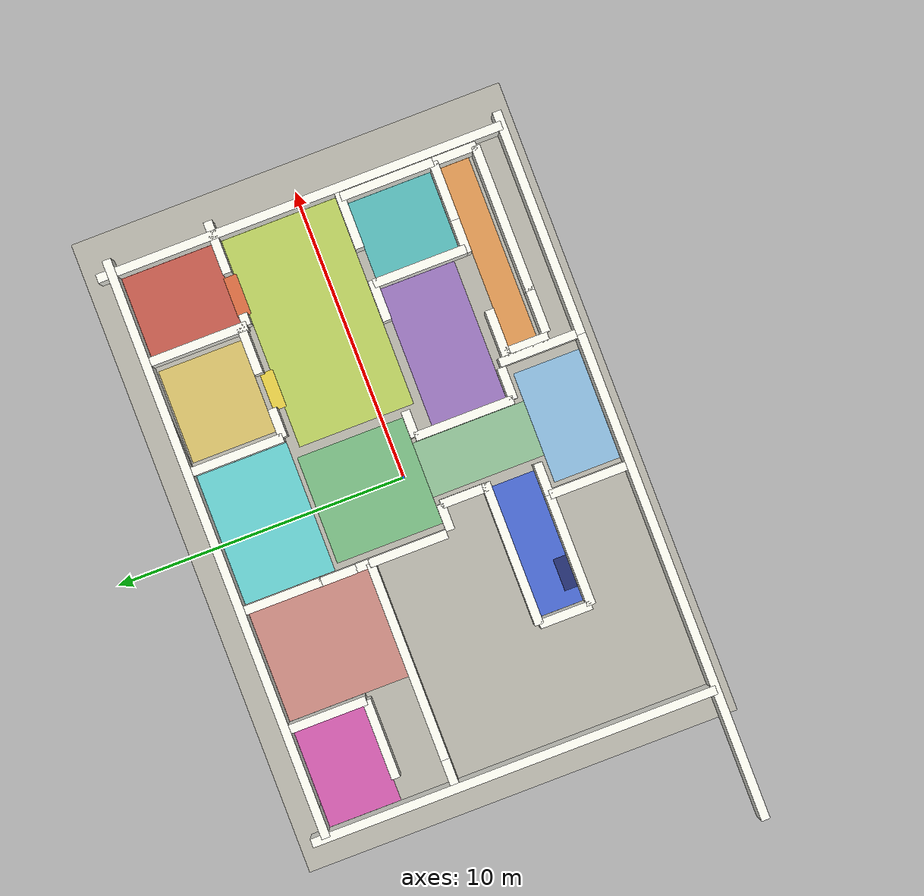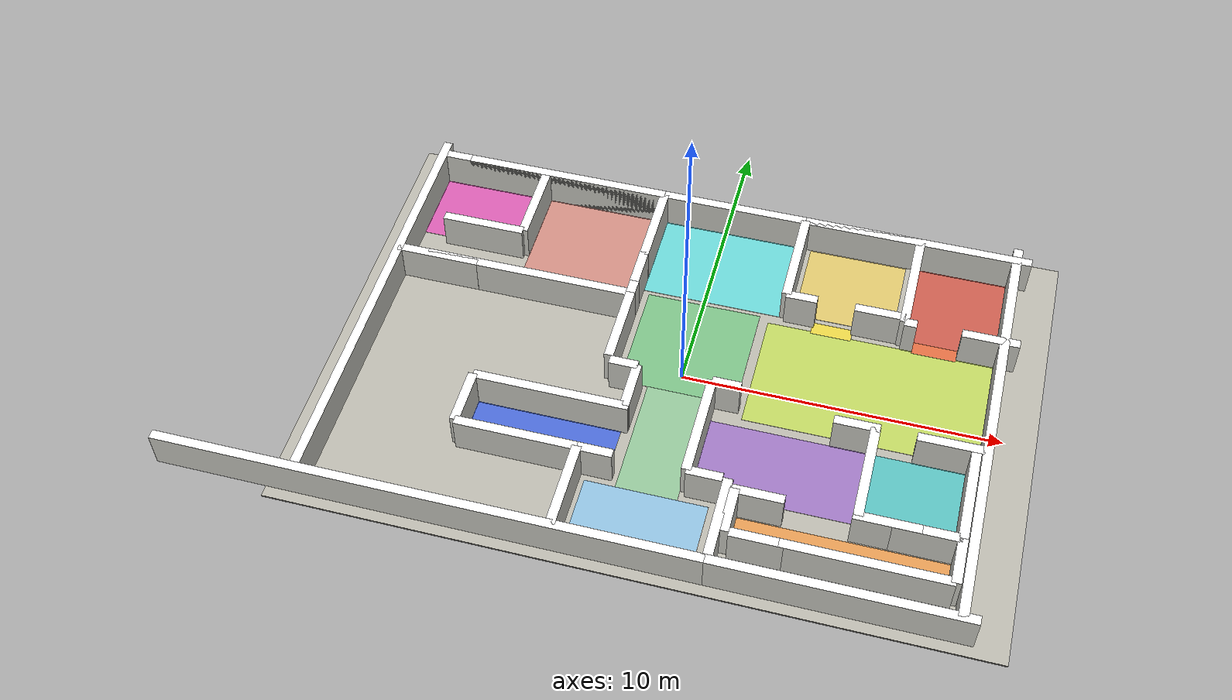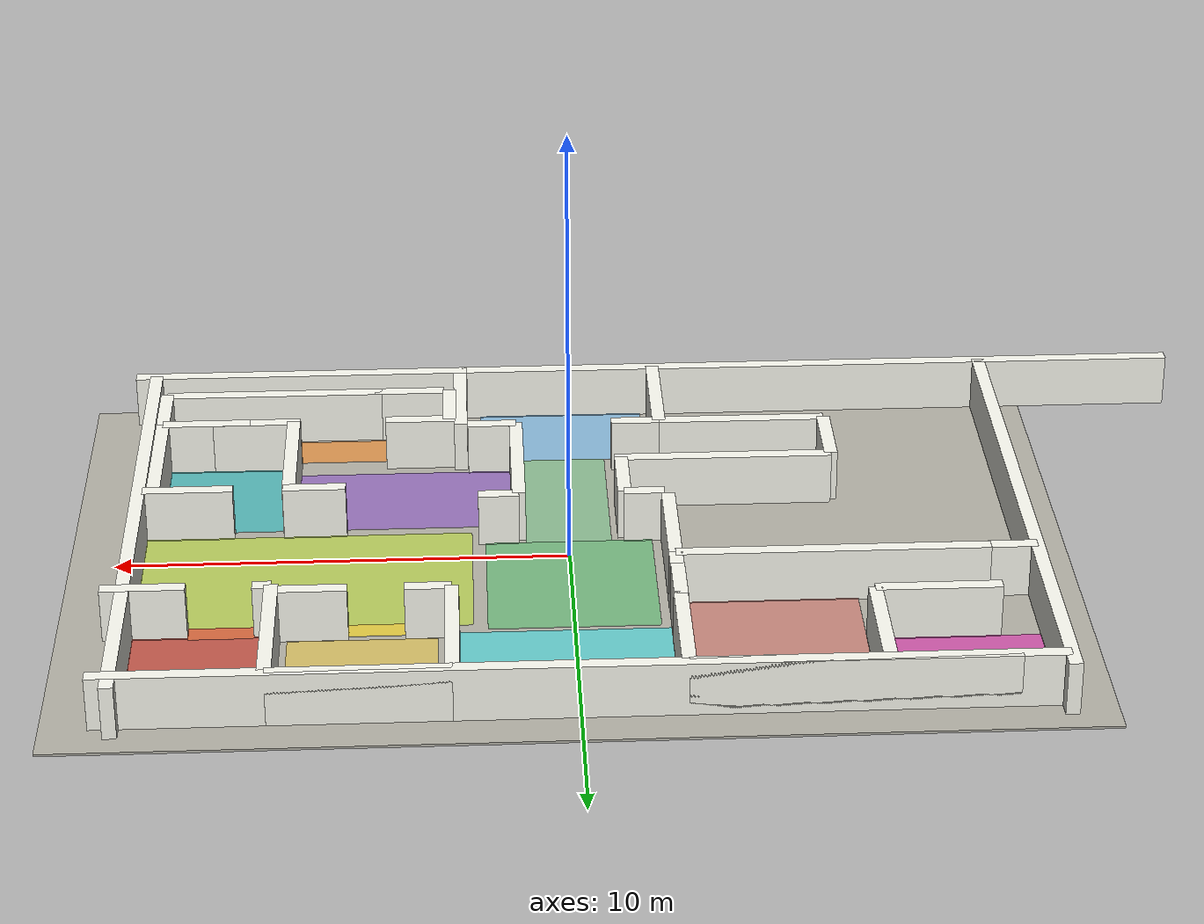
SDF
<sdf version="1.7">
 <world name="map">
  <physics type="ode">
   <max_step_size>0.001</max_step_size>
   <real_time_factor>2</real_time_factor>
   <real_time_update_rate>2000</real_time_update_rate>
  </physics>
  <scene><ambient>0.62 0.62 0.6 1</ambient><background>0.2 0.25 0.3 1</background><shadows>0</shadows></scene>
  <gravity>0 0 -9.8</gravity>
  <magnetic_field>6e-06 2.3e-05 -4.2e-05</magnetic_field>
  <light name="sun" type="directional">
   <pose>0 0 10 0 -0 0</pose>
   <diffuse>0.8 0.8 0.8 1</diffuse>
   <specular>0.2 0.2 0.2 1</specular>
   <direction>-0.5 0.1 -0.9</direction>
   <attenuation><range>10</range></attenuation>
   <spot><inner_angle>0</inner_angle><outer_angle>0</outer_angle><falloff>0</falloff></spot>
  </light>
  <model name="facility_floor">
   <static>1</static>
   <link name="floor_link">
    <pose>0 0 -0.025 0 -0 0</pose>
    <collision name="collision"><geometry><box><size>22 15 0.05</size></box></geometry></collision>
    <visual name="visual">
     <geometry><box><size>22 15 0.05</size></box></geometry>
     <material>
      <ambient>0.7 0.69 0.65 1</ambient>
      <diffuse>0.7 0.69 0.65 1</diffuse>
      <specular>0.1 0.1 0.08 1</specular>
     </material>
    </visual>
   </link>
  </model>
  <model name="wall_outer_north">
   <static>1</static>
   <pose>0 6.5 0.6 0 -0 0</pose>
   <link name="link">
    <collision name="collision"><geometry><box><size>20 0.3 1.2</size></box></geometry></collision>
    <visual name="visual">
     <geometry><box><size>20 0.3 1.2</size></box></geometry>
     <material>
      <ambient>0.98 0.98 0.94 1</ambient>
      <diffuse>0.98 0.98 0.94 1</diffuse>
      <specular>0.35 0.35 0.32 1</specular>
     </material>
    </visual>
   </link>
  </model>
  <model name="wall_outer_west">
   <static>1</static>
   <pose>-10 0 0.6 0 -0 0</pose>
   <link name="link">
    <collision name="collision"><geometry><box><size>0.3 14 1.2</size></box></geometry></collision>
    <visual name="visual">
     <geometry><box><size>0.3 14 1.2</size></box></geometry>
     <material>
      <ambient>0.98 0.98 0.94 1</ambient>
      <diffuse>0.98 0.98 0.94 1</diffuse>
      <specular>0.35 0.35 0.32 1</specular>
     </material>
    </visual>
   </link>
  </model>
  <model name="wall_outer_east">
   <static>1</static>
   <pose>9.52082 0 0.6 0 -0 0</pose>
   <link name="link">
    <collision name="collision"><geometry><box><size>0.3 14 1.2</size></box></geometry></collision>
    <visual name="visual">
     <geometry><box><size>0.3 14 1.2</size></box></geometry>
     <material>
      <ambient>0.98 0.98 0.94 1</ambient>
      <diffuse>0.98 0.98 0.94 1</diffuse>
      <specular>0.35 0.35 0.32 1</specular>
     </material>
    </visual>
   </link>
  </model>
  <model name="wall_outer_south_west">
   <static>1</static>
   <pose>-6.1 -7 0.6 0 -0 0</pose>
   <link name="link">
    <collision name="collision"><geometry><box><size>16.8 0.3 1.2</size></box></geometry></collision>
    <visual name="visual">
     <geometry><box><size>16.8 0.3 1.2</size></box></geometry>
     <material>
      <ambient>0.98 0.98 0.94 1</ambient>
      <diffuse>0.98 0.98 0.94 1</diffuse>
      <specular>0.35 0.35 0.32 1</specular>
     </material>
    </visual>
   </link>
  </model>
  <model name="wall_outer_south_east">
   <static>1</static>
   <pose>6.1 -7 0.6 0 -0 0</pose>
   <link name="link">
    <collision name="collision"><geometry><box><size>7.8 0.3 1.2</size></box></geometry></collision>
    <visual name="visual">
     <geometry><box><size>7.8 0.3 1.2</size></box></geometry>
     <material>
      <ambient>0.98 0.98 0.94 1</ambient>
      <diffuse>0.98 0.98 0.94 1</diffuse>
      <specular>0.35 0.35 0.32 1</specular>
     </material>
    </visual>
   </link>
  </model>
  <model name="wall_lobby_west">
   <static>1</static>
   <pose>-2.2 -5.6 0.6 0 -0 0</pose>
   <link name="link">
    <collision name="collision"><geometry><box><size>0.3 2.8 1.2</size></box></geometry></collision>
    <visual name="visual">
     <geometry><box><size>0.3 2.8 1.2</size></box></geometry>
     <material>
      <ambient>0.98 0.98 0.94 1</ambient>
      <diffuse>0.98 0.98 0.94 1</diffuse>
      <specular>0.35 0.35 0.32 1</specular>
     </material>
    </visual>
   </link>
  </model>
  <model name="wall_lobby_east">
   <static>1</static>
   <pose>2.36275 -5.6 0.6 0 -0 0</pose>
   <link name="link">
    <collision name="collision"><geometry><box><size>0.3 2.8 1.2</size></box></geometry></collision>
    <visual name="visual">
     <geometry><box><size>0.3 2.8 1.2</size></box></geometry>
     <material>
      <ambient>0.98 0.98 0.94 1</ambient>
      <diffuse>0.98 0.98 0.94 1</diffuse>
      <specular>0.35 0.35 0.32 1</specular>
     </material>
    </visual>
   </link>
  </model>
  <model name="wall_lobby_north_left">
   <static>1</static>
   <pose>-1.65 -4.2 0.6 0 -0 0</pose>
   <link name="link">
    <collision name="collision"><geometry><box><size>1.1 0.3 1.2</size></box></geometry></collision>
    <visual name="visual">
     <geometry><box><size>1.1 0.3 1.2</size></box></geometry>
     <material>
      <ambient>0.98 0.98 0.94 1</ambient>
      <diffuse>0.98 0.98 0.94 1</diffuse>
      <specular>0.35 0.35 0.32 1</specular>
     </material>
    </visual>
   </link>
  </model>
  <model name="wall_lobby_north_right">
   <static>1</static>
   <pose>1.65 -4.2 0.6 0 -0 0</pose>
   <link name="link">
    <collision name="collision"><geometry><box><size>1.1 0.3 1.2</size></box></geometry></collision>
    <visual name="visual">
     <geometry><box><size>1.1 0.3 1.2</size></box></geometry>
     <material>
      <ambient>0.98 0.98 0.94 1</ambient>
      <diffuse>0.98 0.98 0.94 1</diffuse>
      <specular>0.35 0.35 0.32 1</specular>
     </material>
    </visual>
   </link>
  </model>
  <model name="wall_mother_base_west">
   <static>1</static>
   <pose>-6 -3.3 0.6 0 -0 0</pose>
   <link name="link">
    <collision name="collision"><geometry><box><size>0.3 1.8 1.2</size></box></geometry></collision>
    <visual name="visual">
     <geometry><box><size>0.3 1.8 1.2</size></box></geometry>
     <material>
      <ambient>0.98 0.98 0.94 1</ambient>
      <diffuse>0.98 0.98 0.94 1</diffuse>
      <specular>0.35 0.35 0.32 1</specular>
     </material>
    </visual>
   </link>
  </model>
  <model name="wall_mother_base_north">
   <static>1</static>
   <pose>-3.55 -2.4 0.6 0 -0 0</pose>
   <link name="link">
    <collision name="collision"><geometry><box><size>4.9 0.3 1.2</size></box></geometry></collision>
    <visual name="visual">
     <geometry><box><size>4.9 0.3 1.2</size></box></geometry>
     <material>
      <ambient>0.98 0.98 0.94 1</ambient>
      <diffuse>0.98 0.98 0.94 1</diffuse>
      <specular>0.35 0.35 0.32 1</specular>
     </material>
    </visual>
   </link>
  </model>
  <model name="wall_mother_base_south">
   <static>1</static>
   <pose>-4.1 -4.2 0.6 0 -0 0</pose>
   <link name="link">
    <collision name="collision"><geometry><box><size>3.8 0.3 1.2</size></box></geometry></collision>
    <visual name="visual">
     <geometry><box><size>3.8 0.3 1.2</size></box></geometry>
     <material>
      <ambient>0.98 0.98 0.94 1</ambient>
      <diffuse>0.98 0.98 0.94 1</diffuse>
      <specular>0.35 0.35 0.32 1</specular>
     </material>
    </visual>
   </link>
  </model>
  <model name="wall_corridor_east">
   <static>1</static>
   <pose>1.1 -2.5 0.6 0 -0 0</pose>
   <link name="link">
    <collision name="collision"><geometry><box><size>0.3 3.4 1.2</size></box></geometry></collision>
    <visual name="visual">
     <geometry><box><size>0.3 3.4 1.2</size></box></geometry>
     <material>
      <ambient>0.98 0.98 0.94 1</ambient>
      <diffuse>0.98 0.98 0.94 1</diffuse>
      <specular>0.35 0.35 0.32 1</specular>
     </material>
    </visual>
   </link>
  </model>
  <model name="wall_corridor_west">
   <static>1</static>
   <pose>-1.24307 -1.6 0.6 0 -0 0</pose>
   <link name="link">
    <collision name="collision"><geometry><box><size>0.3 1.6 1.2</size></box></geometry></collision>
    <visual name="visual">
     <geometry><box><size>0.3 1.6 1.2</size></box></geometry>
     <material>
      <ambient>0.98 0.98 0.94 1</ambient>
      <diffuse>0.98 0.98 0.94 1</diffuse>
      <specular>0.35 0.35 0.32 1</specular>
     </material>
    </visual>
   </link>
  </model>
  <model name="wall_hall_south_left">
   <static>1</static>
   <pose>-1.67934 -0.8 0.6 0 -0 0</pose>
   <link name="link">
    <collision name="collision"><geometry><box><size>0.9 0.3 1.2</size></box></geometry></collision>
    <visual name="visual">
     <geometry><box><size>0.9 0.3 1.2</size></box></geometry>
     <material>
      <ambient>0.98 0.98 0.94 1</ambient>
      <diffuse>0.98 0.98 0.94 1</diffuse>
      <specular>0.35 0.35 0.32 1</specular>
     </material>
    </visual>
   </link>
  </model>
  <model name="wall_hall_south_right">
   <static>1</static>
   <pose>1.55 -0.8 0.6 0 -0 0</pose>
   <link name="link">
    <collision name="collision"><geometry><box><size>0.9 0.3 1.2</size></box></geometry></collision>
    <visual name="visual">
     <geometry><box><size>0.9 0.3 1.2</size></box></geometry>
     <material>
      <ambient>0.98 0.98 0.94 1</ambient>
      <diffuse>0.98 0.98 0.94 1</diffuse>
      <specular>0.35 0.35 0.32 1</specular>
     </material>
    </visual>
   </link>
  </model>
  <model name="wall_hall_west_lower">
   <static>1</static>
   <pose>-2.20096 0.698173 0.6 0 -0 0</pose>
   <link name="link">
    <collision name="collision"><geometry><box><size>0.3 2.7 1.2</size></box></geometry></collision>
    <visual name="visual">
     <geometry><box><size>0.3 2.7 1.2</size></box></geometry>
     <material>
      <ambient>0.98 0.98 0.94 1</ambient>
      <diffuse>0.98 0.98 0.94 1</diffuse>
      <specular>0.35 0.35 0.32 1</specular>
     </material>
    </visual>
   </link>
  </model>
  <model name="wall_hall_east_upper">
   <static>1</static>
   <pose>-2.20831 3.12893 0.6 0 -0 0</pose>
   <link name="link">
    <collision name="collision"><geometry><box><size>0.3 1.3 1.2</size></box></geometry></collision>
    <visual name="visual">
     <geometry><box><size>0.3 1.3 1.2</size></box></geometry>
     <material>
      <ambient>0.98 0.98 0.94 1</ambient>
      <diffuse>0.98 0.98 0.94 1</diffuse>
      <specular>0.35 0.35 0.32 1</specular>
     </material>
    </visual>
   </link>
  </model>
  <model name="wall_lab_north">
   <static>1</static>
   <pose>-5.6 6.5 0.6 0 -0 0</pose>
   <link name="link">
    <collision name="collision"><geometry><box><size>6.8 0.3 1.2</size></box></geometry></collision>
    <visual name="visual">
     <geometry><box><size>6.8 0.3 1.2</size></box></geometry>
     <material>
      <ambient>0.98 0.98 0.94 1</ambient>
      <diffuse>0.98 0.98 0.94 1</diffuse>
      <specular>0.35 0.35 0.32 1</specular>
     </material>
    </visual>
   </link>
  </model>
  <model name="wall_lab_south">
   <static>1</static>
   <pose>-5.6 2 0.6 0 -0 0</pose>
   <link name="link">
    <collision name="collision"><geometry><box><size>6.8 0.3 1.2</size></box></geometry></collision>
    <visual name="visual">
     <geometry><box><size>6.8 0.3 1.2</size></box></geometry>
     <material>
      <ambient>0.98 0.98 0.94 1</ambient>
      <diffuse>0.98 0.98 0.94 1</diffuse>
      <specular>0.35 0.35 0.32 1</specular>
     </material>
    </visual>
   </link>
  </model>
  <model name="wall_lab_east_lower">
   <static>1</static>
   <pose>-2.2 2.25 0.6 0 -0 0</pose>
   <link name="link">
    <collision name="collision"><geometry><box><size>0.3 0.5 1.2</size></box></geometry></collision>
    <visual name="visual">
     <geometry><box><size>0.3 0.5 1.2</size></box></geometry>
     <material>
      <ambient>0.98 0.98 0.94 1</ambient>
      <diffuse>0.98 0.98 0.94 1</diffuse>
      <specular>0.35 0.35 0.32 1</specular>
     </material>
    </visual>
   </link>
  </model>
  <model name="wall_lab_east_upper">
   <static>1</static>
   <pose>-2.2 5.1 0.6 0 -0 0</pose>
   <link name="link">
    <collision name="collision"><geometry><box><size>0.3 2.8 1.2</size></box></geometry></collision>
    <visual name="visual">
     <geometry><box><size>0.3 2.8 1.2</size></box></geometry>
     <material>
      <ambient>0.98 0.98 0.94 1</ambient>
      <diffuse>0.98 0.98 0.94 1</diffuse>
      <specular>0.35 0.35 0.32 1</specular>
     </material>
    </visual>
   </link>
  </model>
  <model name="wall_prep_partition">
   <static>1</static>
   <pose>-6.3 5.1 0.6 0 -0 0</pose>
   <link name="link">
    <collision name="collision"><geometry><box><size>0.3 2.8 1.2</size></box></geometry></collision>
    <visual name="visual">
     <geometry><box><size>0.3 2.8 1.2</size></box></geometry>
     <material>
      <ambient>0.98 0.98 0.94 1</ambient>
      <diffuse>0.98 0.98 0.94 1</diffuse>
      <specular>0.35 0.35 0.32 1</specular>
     </material>
    </visual>
   </link>
  </model>
  <model name="wall_prep_south">
   <static>1</static>
   <pose>-7.65 3.7 0.6 0 -0 0</pose>
   <link name="link">
    <collision name="collision"><geometry><box><size>2.7 0.3 1.2</size></box></geometry></collision>
    <visual name="visual">
     <geometry><box><size>2.7 0.3 1.2</size></box></geometry>
     <material>
      <ambient>0.98 0.98 0.94 1</ambient>
      <diffuse>0.98 0.98 0.94 1</diffuse>
      <specular>0.35 0.35 0.32 1</specular>
     </material>
    </visual>
   </link>
  </model>
  <model name="wall_prep_south_1">
   <static>1</static>
   <pose>-8.65585 1.99879 0.6 0 -0 0</pose>
   <link name="link">
    <collision name="collision"><geometry><box><size>2.7 0.3 1.2</size></box></geometry></collision>
    <visual name="visual">
     <geometry><box><size>2.7 0.3 1.2</size></box></geometry>
     <material>
      <ambient>0.98 0.98 0.94 1</ambient>
      <diffuse>0.98 0.98 0.94 1</diffuse>
      <specular>0.35 0.35 0.32 1</specular>
     </material>
    </visual>
   </link>
  </model>
  <model name="wall_server_west">
   <static>1</static>
   <pose>2.6 4.85 0.6 0 -0 0</pose>
   <link name="link">
    <collision name="collision"><geometry><box><size>0.3 3.3 1.2</size></box></geometry></collision>
    <visual name="visual">
     <geometry><box><size>0.3 3.3 1.2</size></box></geometry>
     <material>
      <ambient>0.98 0.98 0.94 1</ambient>
      <diffuse>0.98 0.98 0.94 1</diffuse>
      <specular>0.35 0.35 0.32 1</specular>
     </material>
    </visual>
   </link>
  </model>
  <model name="wall_server_north">
   <static>1</static>
   <pose>4.5 6.5 0.6 0 -0 0</pose>
   <link name="link">
    <collision name="collision"><geometry><box><size>3.8 0.3 1.2</size></box></geometry></collision>
    <visual name="visual">
     <geometry><box><size>3.8 0.3 1.2</size></box></geometry>
     <material>
      <ambient>0.98 0.98 0.94 1</ambient>
      <diffuse>0.98 0.98 0.94 1</diffuse>
      <specular>0.35 0.35 0.32 1</specular>
     </material>
    </visual>
   </link>
  </model>
  <model name="wall_server_south_left">
   <static>1</static>
   <pose>3.1 3.2 0.6 0 -0 0</pose>
   <link name="link">
    <collision name="collision"><geometry><box><size>1 0.3 1.2</size></box></geometry></collision>
    <visual name="visual">
     <geometry><box><size>1 0.3 1.2</size></box></geometry>
     <material>
      <ambient>0.98 0.98 0.94 1</ambient>
      <diffuse>0.98 0.98 0.94 1</diffuse>
      <specular>0.35 0.35 0.32 1</specular>
     </material>
    </visual>
   </link>
  </model>
  <model name="wall_server_south_right">
   <static>1</static>
   <pose>5.6 3.2 0.6 0 -0 0</pose>
   <link name="link">
    <collision name="collision"><geometry><box><size>1.6 0.3 1.2</size></box></geometry></collision>
    <visual name="visual">
     <geometry><box><size>1.6 0.3 1.2</size></box></geometry>
     <material>
      <ambient>0.98 0.98 0.94 1</ambient>
      <diffuse>0.98 0.98 0.94 1</diffuse>
      <specular>0.35 0.35 0.32 1</specular>
     </material>
    </visual>
   </link>
  </model>
  <model name="wall_restricted_west">
   <static>1</static>
   <pose>6.4 4.75 0.6 0 -0 0</pose>
   <link name="link">
    <collision name="collision"><geometry><box><size>0.3 3.5 1.2</size></box></geometry></collision>
    <visual name="visual">
     <geometry><box><size>0.3 3.5 1.2</size></box></geometry>
     <material>
      <ambient>0.98 0.98 0.94 1</ambient>
      <diffuse>0.98 0.98 0.94 1</diffuse>
      <specular>0.35 0.35 0.32 1</specular>
     </material>
    </visual>
   </link>
  </model>
  <model name="wall_restricted_south_left">
   <static>1</static>
   <pose>6.6 3 0.6 0 -0 0</pose>
   <link name="link">
    <collision name="collision"><geometry><box><size>0.4 0.3 1.2</size></box></geometry></collision>
    <visual name="visual">
     <geometry><box><size>0.4 0.3 1.2</size></box></geometry>
     <material>
      <ambient>0.98 0.98 0.94 1</ambient>
      <diffuse>0.98 0.98 0.94 1</diffuse>
      <specular>0.35 0.35 0.32 1</specular>
     </material>
    </visual>
   </link>
  </model>
  <model name="wall_restricted_south_right">
   <static>1</static>
   <pose>9.1 3 0.6 0 -0 0</pose>
   <link name="link">
    <collision name="collision"><geometry><box><size>1.8 0.3 1.2</size></box></geometry></collision>
    <visual name="visual">
     <geometry><box><size>1.8 0.3 1.2</size></box></geometry>
     <material>
      <ambient>0.98 0.98 0.94 1</ambient>
      <diffuse>0.98 0.98 0.94 1</diffuse>
      <specular>0.35 0.35 0.32 1</specular>
     </material>
    </visual>
   </link>
  </model>
  <model name="wall_service_east">
   <static>1</static>
   <pose>9.2 -2.9 0.6 0 -0 0</pose>
   <link name="link">
    <collision name="collision"><geometry><box><size>0.3 3.2 1.2</size></box></geometry></collision>
    <visual name="visual">
     <geometry><box><size>0.3 3.2 1.2</size></box></geometry>
     <material>
      <ambient>0.98 0.98 0.94 1</ambient>
      <diffuse>0.98 0.98 0.94 1</diffuse>
      <specular>0.35 0.35 0.32 1</specular>
     </material>
    </visual>
   </link>
  </model>
  <model name="wall_storage_utility_partition">
   <static>1</static>
   <pose>6.2 -2.9 0.6 0 -0 0</pose>
   <link name="link">
    <collision name="collision"><geometry><box><size>0.3 3.2 1.2</size></box></geometry></collision>
    <visual name="visual">
     <geometry><box><size>0.3 3.2 1.2</size></box></geometry>
     <material>
      <ambient>0.98 0.98 0.94 1</ambient>
      <diffuse>0.98 0.98 0.94 1</diffuse>
      <specular>0.35 0.35 0.32 1</specular>
     </material>
    </visual>
   </link>
  </model>
  <model name="wall_service_north_mid">
   <static>1</static>
   <pose>5.63336 -1.3 0.6 0 -0 0</pose>
   <link name="link">
    <collision name="collision"><geometry><box><size>1.4 0.3 1.2</size></box></geometry></collision>
    <visual name="visual">
     <geometry><box><size>1.4 0.3 1.2</size></box></geometry>
     <material>
      <ambient>0.98 0.98 0.94 1</ambient>
      <diffuse>0.98 0.98 0.94 1</diffuse>
      <specular>0.35 0.35 0.32 1</specular>
     </material>
    </visual>
   </link>
  </model>
  <model name="wall_service_north_right">
   <static>1</static>
   <pose>8.43292 -1.3 0.6 0 -0 0</pose>
   <link name="link">
    <collision name="collision"><geometry><box><size>2 0.3 1.2</size></box></geometry></collision>
    <visual name="visual">
     <geometry><box><size>2 0.3 1.2</size></box></geometry>
     <material>
      <ambient>0.98 0.98 0.94 1</ambient>
      <diffuse>0.98 0.98 0.94 1</diffuse>
      <specular>0.35 0.35 0.32 1</specular>
     </material>
    </visual>
   </link>
  </model>
  <model name="wall_passage_north_left">
   <static>1</static>
   <pose>3.2889 -4.5 0.6 0 -0 0</pose>
   <link name="link">
    <collision name="collision"><geometry><box><size>1.6 0.3 1.2</size></box></geometry></collision>
    <visual name="visual">
     <geometry><box><size>1.6 0.3 1.2</size></box></geometry>
     <material>
      <ambient>0.98 0.98 0.94 1</ambient>
      <diffuse>0.98 0.98 0.94 1</diffuse>
      <specular>0.35 0.35 0.32 1</specular>
     </material>
    </visual>
   </link>
  </model>
  <model name="wall_passage_north_right">
   <static>1</static>
   <pose>8.2 -4.5 0.6 0 -0 0</pose>
   <link name="link">
    <collision name="collision"><geometry><box><size>2 0.3 1.2</size></box></geometry></collision>
    <visual name="visual">
     <geometry><box><size>2 0.3 1.2</size></box></geometry>
     <material>
      <ambient>0.98 0.98 0.94 1</ambient>
      <diffuse>0.98 0.98 0.94 1</diffuse>
      <specular>0.35 0.35 0.32 1</specular>
     </material>
    </visual>
   </link>
  </model>
  <model name="wall_passage_north_right_1">
   <static>1</static>
   <pose>7.05106 -4.49709 0.6 0 -0 0</pose>
   <link name="link">
    <collision name="collision"><geometry><box><size>2 0.3 1.2</size></box></geometry></collision>
    <visual name="visual">
     <geometry><box><size>2 0.3 1.2</size></box></geometry>
     <material>
      <ambient>0.98 0.98 0.94 1</ambient>
      <diffuse>0.98 0.98 0.94 1</diffuse>
      <specular>0.35 0.35 0.32 1</specular>
     </material>
    </visual>
   </link>
  </model>
  <model name="wall_passage_north_left_1">
   <static>1</static>
   <pose>3.55993 -5.961 0.6 0 -0 0</pose>
   <link name="link">
    <collision name="collision"><geometry><box><size>1.6 0.3 1.2</size></box></geometry></collision>
    <visual name="visual">
     <geometry><box><size>1.6 0.3 1.2</size></box></geometry>
     <material>
      <ambient>0.98 0.98 0.94 1</ambient>
      <diffuse>0.98 0.98 0.94 1</diffuse>
      <specular>0.35 0.35 0.32 1</specular>
     </material>
    </visual>
   </link>
  </model>
  <model name="wall_passage_south">
   <static>1</static>
   <pose>6.7 -5.96 0.6 0 -0 0</pose>
   <link name="link">
    <collision name="collision"><geometry><box><size>5 0.3 1.2</size></box></geometry></collision>
    <visual name="visual">
     <geometry><box><size>5 0.3 1.2</size></box></geometry>
     <material>
      <ambient>0.98 0.98 0.94 1</ambient>
      <diffuse>0.98 0.98 0.94 1</diffuse>
      <specular>0.35 0.35 0.32 1</specular>
     </material>
    </visual>
   </link>
  </model>
  <model name="wall_passage_west">
   <static>1</static>
   <pose>2.61652 -5.23302 0.6 0 -0 0</pose>
   <link name="link">
    <collision name="collision"><geometry><box><size>0.3 1.5 1.2</size></box></geometry></collision>
    <visual name="visual">
     <geometry><box><size>0.3 1.5 1.2</size></box></geometry>
     <material>
      <ambient>0.98 0.98 0.94 1</ambient>
      <diffuse>0.98 0.98 0.94 1</diffuse>
      <specular>0.35 0.35 0.32 1</specular>
     </material>
    </visual>
   </link>
  </model>
  <model name="wall_passage_east">
   <static>1</static>
   <pose>9.2 -5.25 0.6 0 -0 0</pose>
   <link name="link">
    <collision name="collision"><geometry><box><size>0.3 1.5 1.2</size></box></geometry></collision>
    <visual name="visual">
     <geometry><box><size>0.3 1.5 1.2</size></box></geometry>
     <material>
      <ambient>0.98 0.98 0.94 1</ambient>
      <diffuse>0.98 0.98 0.94 1</diffuse>
      <specular>0.35 0.35 0.32 1</specular>
     </material>
    </visual>
   </link>
  </model>
  <model name="entrance_marker">
   <static>1</static>
   <pose>0 -5.7 0.012 0 -0 0</pose>
   <link name="link">
    <visual name="visual">
     <geometry><box><size>3.8 2.3 0.02</size></box></geometry>
     <material>
      <ambient>0.5 0.78 1 0.66</ambient>
      <diffuse>0.5 0.78 1 0.66</diffuse>
      <emissive>0.07 0.12 0.18 1</emissive>
     </material>
    </visual>
   </link>
  </model>
  <model name="corridor_marker">
   <static>1</static>
   <pose>0 -2.6 0.012 0 -0 0</pose>
   <link name="link">
    <visual name="visual">
     <geometry><box><size>1.9 3.9 0.02</size></box></geometry>
     <material>
      <ambient>0.48 0.82 0.56 0.56</ambient>
      <diffuse>0.48 0.82 0.56 0.56</diffuse>
      <emissive>0.05 0.12 0.05 1</emissive>
     </material>
    </visual>
   </link>
  </model>
  <model name="central_hall_marker">
   <static>1</static>
   <pose>0 1.2 0.014 0 -0 0</pose>
   <link name="link">
    <visual name="visual">
     <geometry><box><size>3.7 3.7 0.02</size></box></geometry>
     <material>
      <ambient>0.4 0.78 0.48 0.68</ambient>
      <diffuse>0.4 0.78 0.48 0.68</diffuse>
      <emissive>0.06 0.14 0.06 1</emissive>
     </material>
    </visual>
   </link>
  </model>
  <model name="mother_base_marker">
   <static>1</static>
   <pose>-3.575 -3.3 0.014 0 -0 0</pose>
   <link name="link">
    <visual name="visual">
     <geometry><box><size>4.55 1.5 0.02</size></box></geometry>
     <material>
      <ambient>0.14 0.32 0.92 0.7</ambient>
      <diffuse>0.14 0.32 0.92 0.7</diffuse>
      <emissive>0.03 0.06 0.18 1</emissive>
     </material>
    </visual>
   </link>
  </model>
  <model name="charging_marker">
   <static>1</static>
   <pose>-4.8 -3.825 0.016 0 -0 0</pose>
   <link name="link">
    <visual name="visual">
     <geometry><box><size>1.1 0.45 0.02</size></box></geometry>
     <material>
      <ambient>0.02 0.08 0.42 0.78</ambient>
      <diffuse>0.02 0.08 0.42 0.78</diffuse>
      <emissive>0.02 0.04 0.14 1</emissive>
     </material>
    </visual>
   </link>
  </model>
  <model name="lab_marker">
   <static>1</static>
   <pose>-4.25 4.25 0.012 0 -0 0</pose>
   <link name="link">
    <visual name="visual">
     <geometry><box><size>3.8 4.2 0.02</size></box></geometry>
     <material>
      <ambient>0.88 0.46 0.42 0.58</ambient>
      <diffuse>0.88 0.46 0.42 0.58</diffuse>
      <emissive>0.12 0.04 0.03 1</emissive>
     </material>
    </visual>
   </link>
  </model>
  <model name="prep_room_marker">
   <static>1</static>
   <pose>-8.15 5.1 0.012 0 -0 0</pose>
   <link name="link">
    <visual name="visual">
     <geometry><box><size>3.4 2.5 0.02</size></box></geometry>
     <material>
      <ambient>0.92 0.18 0.72 0.62</ambient>
      <diffuse>0.92 0.18 0.72 0.62</diffuse>
      <emissive>0.16 0.02 0.11 1</emissive>
     </material>
    </visual>
   </link>
  </model>
  <model name="north_hall_marker">
   <static>1</static>
   <pose>0.2 4.775 0.013 0 -0 0</pose>
   <link name="link">
    <visual name="visual">
     <geometry><box><size>4.5 3.15 0.02</size></box></geometry>
     <material>
      <ambient>0.24 0.92 0.95 0.6</ambient>
      <diffuse>0.24 0.92 0.95 0.6</diffuse>
      <emissive>0.02 0.14 0.16 1</emissive>
     </material>
    </visual>
   </link>
  </model>
  <model name="east_hall_marker">
   <static>1</static>
   <pose>5.76041 0.85 0.013 0 -0 0</pose>
   <link name="link">
    <visual name="visual">
     <geometry><box><size>7.22082 4 0.02</size></box></geometry>
     <material>
      <ambient>0.78 0.92 0.22 0.6</ambient>
      <diffuse>0.78 0.92 0.22 0.6</diffuse>
      <emissive>0.12 0.16 0.02 1</emissive>
     </material>
    </visual>
   </link>
  </model>
  <model name="server_marker">
   <static>1</static>
   <pose>4.5 4.85 0.012 0 -0 0</pose>
   <link name="link">
    <visual name="visual">
     <geometry><box><size>3.2 2.9 0.02</size></box></geometry>
     <material>
      <ambient>0.96 0.82 0.3 0.62</ambient>
      <diffuse>0.96 0.82 0.3 0.62</diffuse>
      <emissive>0.14 0.1 0.02 1</emissive>
     </material>
    </visual>
   </link>
  </model>
  <model name="server_door_marker">
   <static>1</static>
   <pose>4.2 3 0.016 0 -0 0</pose>
   <link name="link">
    <visual name="visual">
     <geometry><box><size>1.3 0.45 0.02</size></box></geometry>
     <material>
      <ambient>1 0.88 0.18 0.75</ambient>
      <diffuse>1 0.88 0.18 0.75</diffuse>
      <emissive>0.2 0.14 0.02 1</emissive>
     </material>
    </visual>
   </link>
  </model>
  <model name="restricted_gate_marker">
   <static>1</static>
   <pose>7.5 3 0.016 0 -0 0</pose>
   <link name="link">
    <visual name="visual">
     <geometry><box><size>1.4 0.45 0.02</size></box></geometry>
     <material>
      <ambient>0.95 0.34 0.12 0.7</ambient>
      <diffuse>0.95 0.34 0.12 0.7</diffuse>
      <emissive>0.18 0.05 0.02 1</emissive>
     </material>
    </visual>
   </link>
  </model>
  <model name="restricted_marker">
   <static>1</static>
   <pose>7.96041 4.75 0.012 0 -0 0</pose>
   <link name="link">
    <visual name="visual">
     <geometry><box><size>2.82082 3.2 0.02</size></box></geometry>
     <material>
      <ambient>0.84 0.18 0.12 0.62</ambient>
      <diffuse>0.84 0.18 0.12 0.62</diffuse>
      <emissive>0.16 0.03 0.02 1</emissive>
     </material>
    </visual>
   </link>
  </model>
  <model name="storage_marker">
   <static>1</static>
   <pose>3.65 -2.75 0.012 0 -0 0</pose>
   <link name="link">
    <visual name="visual">
     <geometry><box><size>4.8 2.6 0.02</size></box></geometry>
     <material>
      <ambient>0.58 0.36 0.82 0.64</ambient>
      <diffuse>0.58 0.36 0.82 0.64</diffuse>
      <emissive>0.08 0.04 0.14 1</emissive>
     </material>
    </visual>
   </link>
  </model>
  <model name="utility_marker">
   <static>1</static>
   <pose>7.7 -2.9 0.012 0 -0 0</pose>
   <link name="link">
    <visual name="visual">
     <geometry><box><size>2.7 2.9 0.02</size></box></geometry>
     <material>
      <ambient>0.18 0.78 0.8 0.64</ambient>
      <diffuse>0.18 0.78 0.8 0.64</diffuse>
      <emissive>0.02 0.12 0.12 1</emissive>
     </material>
    </visual>
   </link>
  </model>
  <model name="narrow_passage_marker">
   <static>1</static>
   <pose>5.90826 -5.2 0.016 0 -0 0</pose>
   <link name="link">
    <visual name="visual">
     <geometry><box><size>6.28348 1 0.02</size></box></geometry>
     <material>
      <ambient>0.98 0.58 0.2 0.68</ambient>
      <diffuse>0.98 0.58 0.2 0.68</diffuse>
      <emissive>0.16 0.08 0.02 1</emissive>
     </material>
    </visual>
   </link>
  </model>
  <atmosphere type="adiabatic"/>
  <audio><device>default</device></audio>
  <spherical_coordinates>
   <surface_model>EARTH_WGS84</surface_model>
   <latitude_deg>0</latitude_deg>
   <longitude_deg>0</longitude_deg>
   <elevation>0</elevation>
   <heading_deg>0</heading_deg>
  </spherical_coordinates>
 </world>
</sdf>
